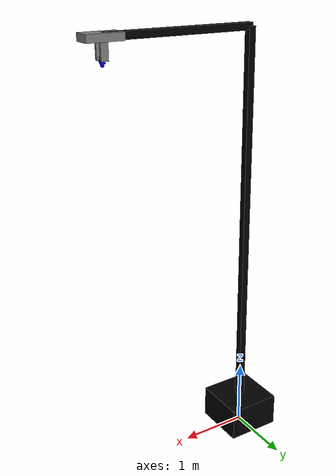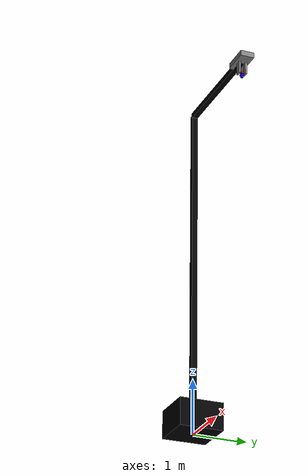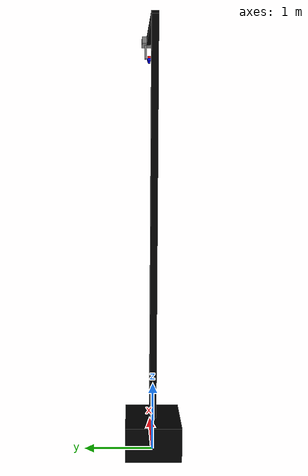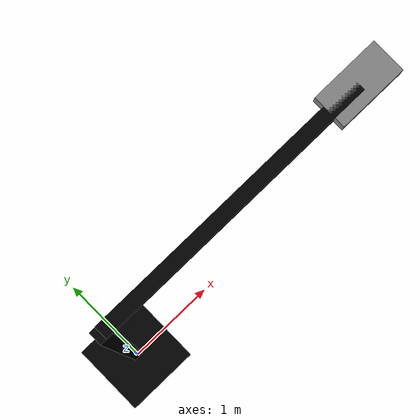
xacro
<?xml version="1.0"?>
<robot xmlns:xacro="http://www.ros.org/wiki/xacro" name="scanner">

  <xacro:include filename="$(find scanner_description)/urdf/scanner.gazebo.xacro" />
  <xacro:include filename="$(find scanner_description)/urdf/scanner.ros2_control.xacro" />
  <xacro:include filename="$(find scanner_description)/urdf/model/base/scanner_base.urdf.xacro"/>
  <xacro:include filename="$(find scanner_description)/urdf/model/tiang_h/scanner_tiang_h.urdf.xacro"/>
  <xacro:include filename="$(find scanner_description)/urdf/model/tiang_v/scanner_tiang_v.urdf.xacro"/>
  <xacro:include filename="$(find scanner_description)/urdf/model/lidar_base/scanner_lidar_base.urdf.xacro"/>
  <xacro:include filename="$(find scanner_description)/urdf/model/lidar_mount_1/scanner_lidar_mount_1.urdf.xacro"/>
  <xacro:include filename="$(find scanner_description)/urdf/model/lidar_mount_2/scanner_lidar_mount_2.urdf.xacro"/>
  <xacro:include filename="$(find scanner_description)/urdf/model/lidar_body/scanner_lidar_body.urdf.xacro"/>
  <xacro:include filename="$(find scanner_description)/urdf/model/lidar_lpx_t1/scanner_lidar_lpx_t1.urdf.xacro"/>
  <xacro:property name="M_PI" value="3.14159274"/>

  <material name="gray">
    <color rgba="0.5 0.5 0.5 1.0"/>
  </material>
  <material name="white">
    <color rgba="1.0 1.0 1.0 1.0"/>
  </material>
  <material name="black">
    <color rgba="0.0 0.0 0.0 1.0"/>
  </material>
  <material name="red">
    <color rgba="1.0 0.0 0.0 1.0"/>
  </material>
  <material name="green">
    <color rgba="0.0 1.0 0.0 1.0"/>
  </material>
  <material name="blue">
    <color rgba="0.0 0.0 1.0 1.0"/>
  </material>

  <!-- =============== Link & Joint =============== -->
  <!-- Base -->
  <link name="map"/>
  <xacro:scanner_base parent="map" color="black">
	<origin xyz="0 0 0"/>
  </xacro:scanner_base>

  <!-- tiang_v -->
  <xacro:scanner_tiang_v parent="base_link" color="black">
	<origin xyz="0 0 0.5"/>
  </xacro:scanner_tiang_v>

  <!-- tiang_h -->
  <xacro:scanner_tiang_h parent="tiang_v" color="black">
	<origin xyz="0.0 0 5.7"/>
  </xacro:scanner_tiang_h>

  <!-- lidar_base -->
  <xacro:scanner_lidar_base parent="tiang_h" color="gray">
	<origin xyz="2.15 0 0"/>
  </xacro:scanner_lidar_base>

  <!-- lidar_mount_1 -->
  <xacro:scanner_lidar_mount_1 parent="lidar_base" color="gray">
	<origin xyz="0 -0.06 -0.15"/>
  </xacro:scanner_lidar_mount_1>

  <!-- lidar_mount_2 -->
  <xacro:scanner_lidar_mount_2 parent="lidar_base" color="gray">
	<origin xyz="0 0.06 -0.15"/>
  </xacro:scanner_lidar_mount_2>

  <!-- lidar_body -->
  <xacro:scanner_lidar_body parent="lidar_mount_1" color="red">
  <origin xyz="0 0.06 -0.1" rpy="${M_PI} 0 ${M_PI/2}"/>
  <axis xyz="1 0 0"/>
  <limit lower="${-M_PI*3/4}" upper="${M_PI*3/4}" effort="50" velocity="10.0"/>
  </xacro:scanner_lidar_body>

  <!-- lidar_lpx_t1 -->
  <xacro:scanner_lidar_lpx_t1 parent="lidar_body" color="blue">
	<origin xyz="0 0 0.01" rpy="0 0 0"/>
  </xacro:scanner_lidar_lpx_t1>

  <!-- =============== Gazebo =============== -->

  <!-- Base -->
  <xacro:scanner_base_gazebo/>

  <!-- tiang_v -->
  <xacro:scanner_tiang_v_gazebo/>

  <!-- tiang_h -->
  <xacro:scanner_tiang_h_gazebo/>

  <!-- lidar_base -->
  <xacro:scanner_lidar_base_gazebo/>

  <!-- lidar_mount_1 -->
  <xacro:scanner_lidar_mount_1_gazebo/>

  <!-- lidar_mount_2 -->
  <xacro:scanner_lidar_mount_2_gazebo/>

  <!-- lidar_body -->
  <xacro:scanner_lidar_body_gazebo/>

  <!-- lidar_lpx_t1 -->
  <xacro:scanner_lidar_lpx_t1_gazebo/>

  <xacro:scanner_gazebo/>
  <xacro:scanner_ros2_control/>

</robot>

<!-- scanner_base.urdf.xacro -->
<robot xmlns:xacro="http://ros.org/wiki/xacro">

  <xacro:include filename="$(find scanner_description)/urdf/model/base/scanner_base.gazebo.xacro"/>

  <xacro:macro name="scanner_base" params="parent color *joint_origin">
    <joint name="base_link_joint" type="fixed">
      <xacro:insert_block name="joint_origin"/>
      <parent link="${parent}"/>
      <child link="base_link"/>
    </joint>

	  <link name="base_link">
      <visual>
        <origin xyz="0 0 0.25"/>
        <geometry><box size="0.8 0.8 0.5"/></geometry>
        <material name="${color}"/>
      </visual>
      <collision>
        <origin xyz="0 0 0.25"/>
        <geometry><box size="0.8 0.8 0.5"/></geometry>
      </collision>
      <inertial>
        <origin xyz="0 0 0.25"/>
        <mass value="400"/>
        <inertia ixx="30" iyy="30" izz="30" ixy="0" ixz="0" iyz="0"/>
      </inertial>
    </link>

  </xacro:macro>

</robot>

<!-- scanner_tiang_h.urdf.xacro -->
<robot xmlns:xacro="http://ros.org/wiki/xacro">

  <xacro:include filename="$(find scanner_description)/urdf/model/tiang_h/scanner_tiang_h.gazebo.xacro"/>

  <xacro:macro name="scanner_tiang_h" params="parent color *joint_origin">
    <joint name="tiang_h_joint" type="fixed">
      <xacro:insert_block name="joint_origin"/>
      <parent link="${parent}"/>
      <child link="tiang_h"/>
    </joint>

    <link name="tiang_h">
      <visual>
        <origin xyz="1.075 0 0"/>
        <geometry><box size="2.15 0.1 0.1"/></geometry>
        <material name="${color}"/>
      </visual>
      <collision>
        <origin xyz="1.075 0 0"/>
        <geometry><box size="2.15 0.1 0.1"/></geometry>
      </collision>
      <inertial>
        <origin xyz="1.075 0 0"/>
        <mass value="20"/>
        <inertia ixx="1" iyy="1" izz="0.5" ixy="0" ixz="0" iyz="0"/>
      </inertial>
    </link>

  </xacro:macro>

</robot>

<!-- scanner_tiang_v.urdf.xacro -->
<robot xmlns:xacro="http://ros.org/wiki/xacro">

  <xacro:include filename="$(find scanner_description)/urdf/model/tiang_v/scanner_tiang_v.gazebo.xacro"/>

  <xacro:macro name="scanner_tiang_v" params="parent color *joint_origin">
    <joint name="tiang_v_joint" type="fixed">
      <xacro:insert_block name="joint_origin"/>
      <parent link="${parent}"/>
      <child link="tiang_v"/>
    </joint>

    <link name="tiang_v">
      <visual>
        <origin xyz="0 0 2.85"/>
        <geometry><box size="0.1 0.1 5.7"/></geometry>
        <material name="${color}"/>
      </visual>
      <collision>
        <origin xyz="0 0 2.85"/>
        <geometry><box size="0.1 0.1 5.7"/></geometry>
      </collision>
      <inertial>
        <origin xyz="0 0 2.85"/>
        <mass value="50"/>
        <inertia ixx="5" iyy="5" izz="1" ixy="0" ixz="0" iyz="0"/>
      </inertial>
    </link>

  </xacro:macro>

</robot>

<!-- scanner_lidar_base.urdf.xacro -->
<robot xmlns:xacro="http://ros.org/wiki/xacro">

  <xacro:include filename="$(find scanner_description)/urdf/model/lidar_base/scanner_lidar_base.gazebo.xacro"/>

  <xacro:macro name="scanner_lidar_base" params="parent color *joint_origin">
    <joint name="lidar_base_joint" type="fixed">
      <xacro:insert_block name="joint_origin"/>
      <parent link="${parent}"/>
      <child link="lidar_base"/>
    </joint>

    <link name="lidar_base">
      <visual>
        <geometry><box size="0.5 0.25 0.1"/></geometry>
        <material name="${color}"/>
      </visual>
      <collision>
        <geometry><box size="0.5 0.25 0.1"/></geometry>
      </collision>
      <inertial>
        <mass value="0.5"/>
        <inertia ixx="0.02" iyy="0.02" izz="0.02" ixy="0" ixz="0" iyz="0"/>
      </inertial>
    </link>

  </xacro:macro>

</robot>

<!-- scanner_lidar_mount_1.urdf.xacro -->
<robot xmlns:xacro="http://ros.org/wiki/xacro">

  <xacro:include filename="$(find scanner_description)/urdf/model/lidar_mount_1/scanner_lidar_mount_1.gazebo.xacro"/>

  <xacro:macro name="scanner_lidar_mount_1" params="parent color *joint_origin">
    <joint name="lidar_mount_1_joint" type="fixed">
      <xacro:insert_block name="joint_origin"/>
      <parent link="${parent}"/>
      <child link="lidar_mount_1"/>
    </joint>

    <link name="lidar_mount_1">
      <visual>
        <geometry><box size="0.1 0.03 0.25"/></geometry>
        <material name="${color}"/>
      </visual>
      <collision>
        <geometry><box size="0.1 0.03 0.25"/></geometry>
      </collision>
      <inertial>
        <mass value="0.3"/>
        <inertia ixx="0.02" iyy="0.02" izz="0.02" ixy="0" ixz="0" iyz="0"/>
      </inertial>
    </link>

  </xacro:macro>

</robot>

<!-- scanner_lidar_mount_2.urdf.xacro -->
<robot xmlns:xacro="http://ros.org/wiki/xacro">

  <xacro:include filename="$(find scanner_description)/urdf/model/lidar_mount_2/scanner_lidar_mount_2.gazebo.xacro"/>

  <xacro:macro name="scanner_lidar_mount_2" params="parent color *joint_origin">
    <joint name="lidar_mount_2_joint" type="fixed">
      <xacro:insert_block name="joint_origin"/>
      <parent link="${parent}"/>
      <child link="lidar_mount_2"/>
    </joint>

    <link name="lidar_mount_2">
      <visual>
        <geometry><box size="0.1 0.03 0.25"/></geometry>
        <material name="${color}"/>
      </visual>
      <collision>
        <geometry><box size="0.1 0.03 0.25"/></geometry>
      </collision>
      <inertial>
        <mass value="0.3"/>
        <inertia ixx="0.02" iyy="0.02" izz="0.02" ixy="0" ixz="0" iyz="0"/>
      </inertial>
    </link>

  </xacro:macro>

</robot>

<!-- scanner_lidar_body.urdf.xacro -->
<robot xmlns:xacro="http://ros.org/wiki/xacro">

  <xacro:include filename="$(find scanner_description)/urdf/model/lidar_body/scanner_lidar_body.gazebo.xacro"/>

  <xacro:macro name="scanner_lidar_body" params="parent color *joint_origin *joint_axis *joint_limit">
    <joint name="lidar_body_joint" type="revolute">
      <xacro:insert_block name="joint_origin"/>
      <xacro:insert_block name="joint_axis"/>
      <xacro:insert_block name="joint_limit"/>
      <parent link="${parent}"/>
      <child link="lidar_body"/>

    </joint>

    <link name="lidar_body">
      <visual>
        <origin xyz="0 0 0" rpy="0 0 0"/>
        <geometry><box size="0.05 0.05 0.05"/></geometry>
        <material name="${color}"/>
      </visual>
      <collision>
        <origin xyz="0 0 0" rpy="0 0 0"/>
        <geometry><box size="0.05 0.05 0.05"/></geometry>
      </collision>
      <inertial>
        <mass value="0.1"/>
        <origin xyz="0 0 0"/>
        <inertia ixx="0.1" ixy="0.0" ixz="0.0" iyy="0.1" iyz="0.0" izz="0.1"/>
      </inertial>
    </link>

  </xacro:macro>

</robot>

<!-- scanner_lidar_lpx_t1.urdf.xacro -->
<robot xmlns:xacro="http://ros.org/wiki/xacro">

  <xacro:include filename="$(find scanner_description)/urdf/model/lidar_lpx_t1/scanner_lidar_lpx_t1.gazebo.xacro"/>

  <xacro:macro name="scanner_lidar_lpx_t1" params="parent color *joint_origin">
    <joint name="lidar_lpx_t1_joint" type="fixed">
      <xacro:insert_block name="joint_origin"/>
      <parent link="${parent}"/>
      <child link="lidar_lpx_t1"/>
    </joint>

    <link name="lidar_lpx_t1">
      <visual>
        <geometry>
          <mesh filename="package://scanner_description/meshes/lidar_lpx_t1.stl"/>
        </geometry>
        <material name="${color}"/>
      </visual>
      <collision>
        <geometry>
          <mesh filename="package://scanner_description/meshes/lidar_lpx_t1.stl"/>
        </geometry>
      </collision>
      <inertial>
        <mass value="1.0"/>
        <origin xyz="0 0 0"/>
        <inertia ixx="0.1" ixy="0.0" ixz="0.0" iyy="0.1" iyz="0.0" izz="0.1"/>
      </inertial>
    </link>

  </xacro:macro>

</robot>
